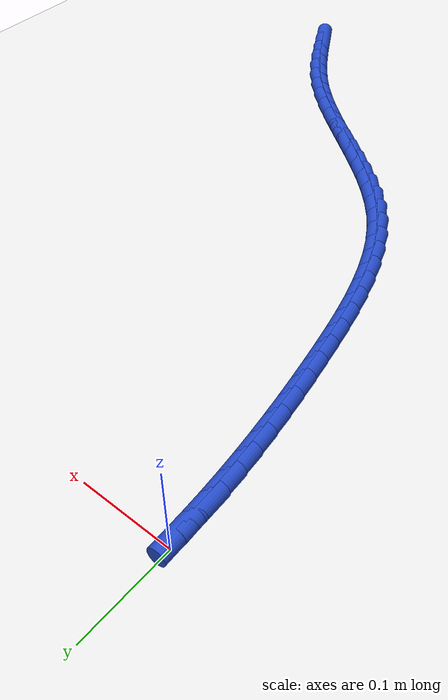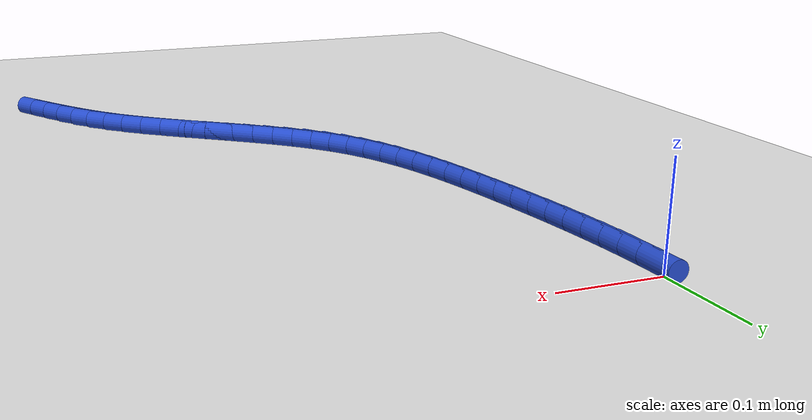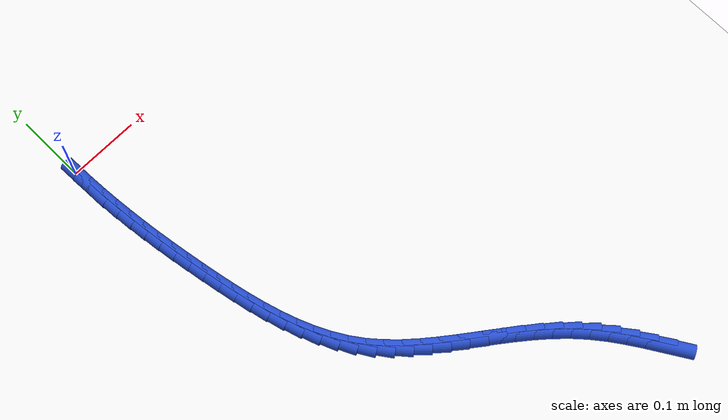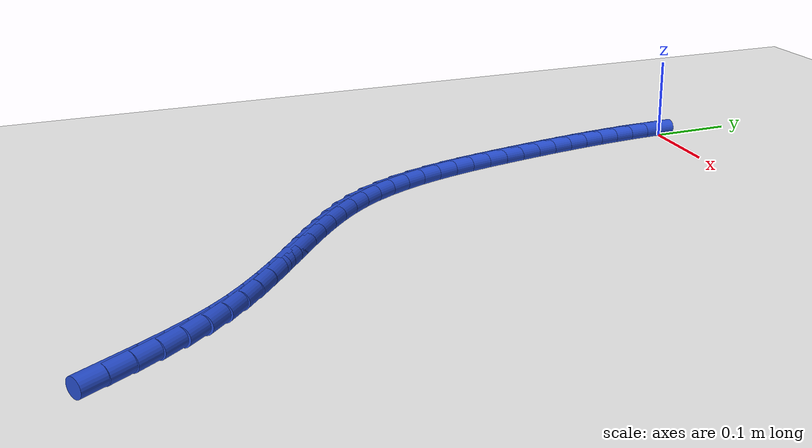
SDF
<sdf version="1.6">
 <world name="default">
  <model name="ground_plane">
   <static>1</static>
   <link name="link">
    <collision name="collision">
     <geometry><plane><normal>0 0 1</normal><size>100 100</size></plane></geometry>
     <surface><friction><ode><mu>100</mu><mu2>50</mu2></ode></friction></surface>
    </collision>
    <visual name="visual">
     <cast_shadows>0</cast_shadows>
     <geometry><plane><normal>0 0 1</normal><size>100 100</size></plane></geometry>
     <material>
      <script><uri>file://media/materials/scripts/gazebo.material</uri><name>Gazebo/WhiteGlow</name></script>
     </material>
    </visual>
   </link>
  </model>
  <model name="line">
   <link name="link_245">
    <pose>0.37834397517060636 -0.7125998111400121 0.01 0 1.57 -1.0191490906033835</pose>
    <collision name="collision">
     <geometry><cylinder><radius>0.01</radius><length>0.08</length></cylinder></geometry>
    </collision>
    <visual name="visual">
     <material>
      <script><name>Gazebo/Blue</name><uri>file://media/materials/scripts/gazebo.material</uri></script>
     </material>
     <geometry><cylinder><radius>0.01</radius><length>0.08</length></cylinder></geometry>
    </visual>
   </link>
   <link name="link_246">
    <pose>0.36546313509296835 -0.6916680827501598 0.01 0 1.57 -0.9931300692732407</pose>
    <collision name="collision">
     <geometry><cylinder><radius>0.01</radius><length>0.08</length></cylinder></geometry>
    </collision>
    <visual name="visual">
     <material>
      <script><name>Gazebo/Blue</name><uri>file://media/materials/scripts/gazebo.material</uri></script>
     </material>
     <geometry><cylinder><radius>0.01</radius><length>0.08</length></cylinder></geometry>
    </visual>
   </link>
   <link name="link_247">
    <pose>0.3520704485507747 -0.6711220488451365 0.01 0 1.57 -0.9532660382957098</pose>
    <collision name="collision">
     <geometry><cylinder><radius>0.01</radius><length>0.08</length></cylinder></geometry>
    </collision>
    <visual name="visual">
     <material>
      <script><name>Gazebo/Blue</name><uri>file://media/materials/scripts/gazebo.material</uri></script>
     </material>
     <geometry><cylinder><radius>0.01</radius><length>0.08</length></cylinder></geometry>
    </visual>
   </link>
   <link name="link_248">
    <pose>0.33792457529140074 -0.6512035332488646 0.01 0 1.57 -0.8992303995549933</pose>
    <collision name="collision">
     <geometry><cylinder><radius>0.01</radius><length>0.08</length></cylinder></geometry>
    </collision>
    <visual name="visual">
     <material>
      <script><name>Gazebo/Blue</name><uri>file://media/materials/scripts/gazebo.material</uri></script>
     </material>
     <geometry><cylinder><radius>0.01</radius><length>0.08</length></cylinder></geometry>
    </visual>
   </link>
   <link name="link_249">
    <pose>0.32278417506222234 -0.6321543597852674 0.01 0 1.57 -0.831809047953428</pose>
    <collision name="collision">
     <geometry><cylinder><radius>0.01</radius><length>0.08</length></cylinder></geometry>
    </collision>
    <visual name="visual">
     <material>
      <script><name>Gazebo/Blue</name><uri>file://media/materials/scripts/gazebo.material</uri></script>
     </material>
     <geometry><cylinder><radius>0.01</radius><length>0.08</length></cylinder></geometry>
    </visual>
   </link>
   <link name="link_250">
    <pose>0.30642457985094623 -0.6142011317170737 0.01 0 1.57 -0.7660137266870134</pose>
    <collision name="collision">
     <geometry><cylinder><radius>0.01</radius><length>0.08</length></cylinder></geometry>
    </collision>
    <visual name="visual">
     <material>
      <script><name>Gazebo/Blue</name><uri>file://media/materials/scripts/gazebo.material</uri></script>
     </material>
     <geometry><cylinder><radius>0.01</radius><length>0.08</length></cylinder></geometry>
    </visual>
   </link>
   <link name="link_251">
    <pose>0.28888545722423525 -0.5973291328577099 0.01 0 1.57 -0.7138799774224115</pose>
    <collision name="collision">
     <geometry><cylinder><radius>0.01</radius><length>0.08</length></cylinder></geometry>
    </collision>
    <visual name="visual">
     <material>
      <script><name>Gazebo/Blue</name><uri>file://media/materials/scripts/gazebo.material</uri></script>
     </material>
     <geometry><cylinder><radius>0.01</radius><length>0.08</length></cylinder></geometry>
    </visual>
   </link>
   <link name="link_252">
    <pose>0.2704178444136168 -0.581330681656933 0.01 0 1.57 -0.6755897471934401</pose>
    <collision name="collision">
     <geometry><cylinder><radius>0.01</radius><length>0.08</length></cylinder></geometry>
    </collision>
    <visual name="visual">
     <material>
      <script><name>Gazebo/Blue</name><uri>file://media/materials/scripts/gazebo.material</uri></script>
     </material>
     <geometry><cylinder><radius>0.01</radius><length>0.08</length></cylinder></geometry>
    </visual>
   </link>
   <link name="link_253">
    <pose>0.2512786913891257 -0.5659926986577726 0.01 0 1.57 -0.6508341289739784</pose>
    <collision name="collision">
     <geometry><cylinder><radius>0.01</radius><length>0.08</length></cylinder></geometry>
    </collision>
    <visual name="visual">
     <material>
      <script><name>Gazebo/Blue</name><uri>file://media/materials/scripts/gazebo.material</uri></script>
     </material>
     <geometry><cylinder><radius>0.01</radius><length>0.08</length></cylinder></geometry>
    </visual>
   </link>
   <link name="link_254">
    <pose>0.2317249481207948 -0.5511021044032574 0.01 0 1.57 -0.6393565794066542</pose>
    <collision name="collision">
     <geometry><cylinder><radius>0.01</radius><length>0.08</length></cylinder></geometry>
    </collision>
    <visual name="visual">
     <material>
      <script><name>Gazebo/Blue</name><uri>file://media/materials/scripts/gazebo.material</uri></script>
     </material>
     <geometry><cylinder><radius>0.01</radius><length>0.08</length></cylinder></geometry>
    </visual>
   </link>
   <link name="link_255">
    <pose>0.21201356457865772 -0.5364458194364166 0.01 0 1.57 -0.641081884900482</pose>
    <collision name="collision">
     <geometry><cylinder><radius>0.01</radius><length>0.08</length></cylinder></geometry>
    </collision>
    <visual name="visual">
     <material>
      <script><name>Gazebo/Blue</name><uri>file://media/materials/scripts/gazebo.material</uri></script>
     </material>
     <geometry><cylinder><radius>0.01</radius><length>0.08</length></cylinder></geometry>
    </visual>
   </link>
   <link name="link_256">
    <pose>0.192401490732748 -0.5218107643002788 0.01 0 1.57 -0.6561763655306646</pose>
    <collision name="collision">
     <geometry><cylinder><radius>0.01</radius><length>0.08</length></cylinder></geometry>
    </collision>
    <visual name="visual">
     <material>
      <script><name>Gazebo/Blue</name><uri>file://media/materials/scripts/gazebo.material</uri></script>
     </material>
     <geometry><cylinder><radius>0.01</radius><length>0.08</length></cylinder></geometry>
    </visual>
   </link>
   <link name="link_257">
    <pose>0.17314567655309926 -0.5069838595378736 0.01 0 1.57 -0.6850477484110048</pose>
    <collision name="collision">
     <geometry><cylinder><radius>0.01</radius><length>0.08</length></cylinder></geometry>
    </collision>
    <visual name="visual">
     <material>
      <script><name>Gazebo/Blue</name><uri>file://media/materials/scripts/gazebo.material</uri></script>
     </material>
     <geometry><cylinder><radius>0.01</radius><length>0.08</length></cylinder></geometry>
    </visual>
   </link>
   <link name="link_258">
    <pose>0.15450307200974503 -0.4917520256922298 0.01 0 1.57 -0.7282779826767604</pose>
    <collision name="collision">
     <geometry><cylinder><radius>0.01</radius><length>0.08</length></cylinder></geometry>
    </collision>
    <visual name="visual">
     <material>
      <script><name>Gazebo/Blue</name><uri>file://media/materials/scripts/gazebo.material</uri></script>
     </material>
     <geometry><cylinder><radius>0.01</radius><length>0.08</length></cylinder></geometry>
    </visual>
   </link>
   <link name="link_259">
    <pose>0.13673062707271888 -0.47590218330637646 0.01 0 1.57 -0.7864662401243016</pose>
    <collision name="collision">
     <geometry><cylinder><radius>0.01</radius><length>0.08</length></cylinder></geometry>
    </collision>
    <visual name="visual">
     <material>
      <script><name>Gazebo/Blue</name><uri>file://media/materials/scripts/gazebo.material</uri></script>
     </material>
     <geometry><cylinder><radius>0.01</radius><length>0.08</length></cylinder></geometry>
    </visual>
   </link>
   <link name="link_260">
    <pose>0.12008529171205436 -0.4592212529233427 0.01 0 1.57 -0.8599518415159249</pose>
    <collision name="collision">
     <geometry><cylinder><radius>0.01</radius><length>0.08</length></cylinder></geometry>
    </collision>
    <visual name="visual">
     <material>
      <script><name>Gazebo/Blue</name><uri>file://media/materials/scripts/gazebo.material</uri></script>
     </material>
     <geometry><cylinder><radius>0.01</radius><length>0.08</length></cylinder></geometry>
    </visual>
   </link>
   <link name="link_261">
    <pose>0.10482401589778458 -0.4414961550861569 0.01 0 1.57 -0.9475885403379194</pose>
    <collision name="collision">
     <geometry><cylinder><radius>0.01</radius><length>0.08</length></cylinder></geometry>
    </collision>
    <visual name="visual">
     <material>
      <script><name>Gazebo/Blue</name><uri>file://media/materials/scripts/gazebo.material</uri></script>
     </material>
     <geometry><cylinder><radius>0.01</radius><length>0.08</length></cylinder></geometry>
    </visual>
   </link>
   <link name="link_262">
    <pose>0.09118950390421879 -0.4225267377561064 0.01 0 1.57 -1.0355263197188833</pose>
    <collision name="collision">
     <geometry><cylinder><radius>0.01</radius><length>0.08</length></cylinder></geometry>
    </collision>
    <visual name="visual">
     <material>
      <script><name>Gazebo/Blue</name><uri>file://media/materials/scripts/gazebo.material</uri></script>
     </material>
     <geometry><cylinder><radius>0.01</radius><length>0.08</length></cylinder></geometry>
    </visual>
   </link>
   <link name="link_263">
    <pose>0.07920291744780436 -0.40231389020284586 0.01 0 1.57 -1.1130215784575517</pose>
    <collision name="collision">
     <geometry><cylinder><radius>0.01</radius><length>0.08</length></cylinder></geometry>
    </collision>
    <visual name="visual">
     <material>
      <script><name>Gazebo/Blue</name><uri>file://media/materials/scripts/gazebo.material</uri></script>
     </material>
     <geometry><cylinder><radius>0.01</radius><length>0.08</length></cylinder></geometry>
    </visual>
   </link>
   <link name="link_264">
    <pose>0.068710481611179 -0.38101724992969915 0.01 0 1.57 -1.1798483005705467</pose>
    <collision name="collision">
     <geometry><cylinder><radius>0.01</radius><length>0.08</length></cylinder></geometry>
    </collision>
    <visual name="visual">
     <material>
      <script><name>Gazebo/Blue</name><uri>file://media/materials/scripts/gazebo.material</uri></script>
     </material>
     <geometry><cylinder><radius>0.01</radius><length>0.08</length></cylinder></geometry>
    </visual>
   </link>
   <link name="link_265">
    <pose>0.05955366027545155 -0.35880077504635144 0.01 0 1.57 -1.2364727321062412</pose>
    <collision name="collision">
     <geometry><cylinder><radius>0.01</radius><length>0.08</length></cylinder></geometry>
    </collision>
    <visual name="visual">
     <material>
      <script><name>Gazebo/Blue</name><uri>file://media/materials/scripts/gazebo.material</uri></script>
     </material>
     <geometry><cylinder><radius>0.01</radius><length>0.08</length></cylinder></geometry>
    </visual>
   </link>
   <link name="link_266">
    <pose>0.0515739173217309 -0.33582842366248805 0.01 0 1.57 -1.2835527300424376</pose>
    <collision name="collision">
     <geometry><cylinder><radius>0.01</radius><length>0.08</length></cylinder></geometry>
    </collision>
    <visual name="visual">
     <material>
      <script><name>Gazebo/Blue</name><uri>file://media/materials/scripts/gazebo.material</uri></script>
     </material>
     <geometry><cylinder><radius>0.01</radius><length>0.08</length></cylinder></geometry>
    </visual>
   </link>
   <link name="link_267">
    <pose>0.044612716631125836 -0.3122641538877939 0.01 0 1.57 -1.3217758745102484</pose>
    <collision name="collision">
     <geometry><cylinder><radius>0.01</radius><length>0.08</length></cylinder></geometry>
    </collision>
    <visual name="visual">
     <material>
      <script><name>Gazebo/Blue</name><uri>file://media/materials/scripts/gazebo.material</uri></script>
     </material>
     <geometry><cylinder><radius>0.01</radius><length>0.08</length></cylinder></geometry>
    </visual>
   </link>
   <link name="link_268">
    <pose>0.03851152208474521 -0.2882719238319542 0.01 0 1.57 -1.3517561274311585</pose>
    <collision name="collision">
     <geometry><cylinder><radius>0.01</radius><length>0.08</length></cylinder></geometry>
    </collision>
    <visual name="visual">
     <material>
      <script><name>Gazebo/Blue</name><uri>file://media/materials/scripts/gazebo.material</uri></script>
     </material>
     <geometry><cylinder><radius>0.01</radius><length>0.08</length></cylinder></geometry>
    </visual>
   </link>
   <link name="link_269">
    <pose>0.033111797563697906 -0.2640156916046542 0.01 0 1.57 -1.37397186811467</pose>
    <collision name="collision">
     <geometry><cylinder><radius>0.01</radius><length>0.08</length></cylinder></geometry>
    </collision>
    <visual name="visual">
     <material>
      <script><name>Gazebo/Blue</name><uri>file://media/materials/scripts/gazebo.material</uri></script>
     </material>
     <geometry><cylinder><radius>0.01</radius><length>0.08</length></cylinder></geometry>
    </visual>
   </link>
   <link name="link_270">
    <pose>0.028255006949092578 -0.23965941531557836 0.01 0 1.57 -1.3887667406625646</pose>
    <collision name="collision">
     <geometry><cylinder><radius>0.01</radius><length>0.08</length></cylinder></geometry>
    </collision>
    <visual name="visual">
     <material>
      <script><name>Gazebo/Blue</name><uri>file://media/materials/scripts/gazebo.material</uri></script>
     </material>
     <geometry><cylinder><radius>0.01</radius><length>0.08</length></cylinder></geometry>
    </visual>
   </link>
   <link name="link_271">
    <pose>0.023783425164528065 -0.21536619926856204 0.01 0 1.57 -1.3993578511209492</pose>
    <collision name="collision">
     <geometry><cylinder><radius>0.01</radius><length>0.08</length></cylinder></geometry>
    </collision>
    <visual name="visual">
     <material>
      <script><name>Gazebo/Blue</name><uri>file://media/materials/scripts/gazebo.material</uri></script>
     </material>
     <geometry><cylinder><radius>0.01</radius><length>0.08</length></cylinder></geometry>
    </visual>
   </link>
   <link name="link_272">
    <pose>0.01960460481178044 -0.19123042823141725 0.01 0 1.57 -1.4110814374841714</pose>
    <collision name="collision">
     <geometry><cylinder><radius>0.01</radius><length>0.08</length></cylinder></geometry>
    </collision>
    <visual name="visual">
     <material>
      <script><name>Gazebo/Blue</name><uri>file://media/materials/scripts/gazebo.material</uri></script>
     </material>
     <geometry><cylinder><radius>0.01</radius><length>0.08</length></cylinder></geometry>
    </visual>
   </link>
   <link name="link_273">
    <pose>0.015738203089775773 -0.1672284715014768 0.01 0 1.57 -1.4244533659177512</pose>
    <collision name="collision">
     <geometry><cylinder><radius>0.01</radius><length>0.08</length></cylinder></geometry>
    </collision>
    <visual name="visual">
     <material>
      <script><name>Gazebo/Blue</name><uri>file://media/materials/scripts/gazebo.material</uri></script>
     </material>
     <geometry><cylinder><radius>0.01</radius><length>0.08</length></cylinder></geometry>
    </visual>
   </link>
   <link name="link_274">
    <pose>0.0122149210378409 -0.1433250722335786 0.01 0 1.57 -1.4394491816027628</pose>
    <collision name="collision">
     <geometry><cylinder><radius>0.01</radius><length>0.08</length></cylinder></geometry>
    </collision>
    <visual name="visual">
     <material>
      <script><name>Gazebo/Blue</name><uri>file://media/materials/scripts/gazebo.material</uri></script>
     </material>
     <geometry><cylinder><radius>0.01</radius><length>0.08</length></cylinder></geometry>
    </visual>
   </link>
   <link name="link_275">
    <pose>0.009065459695302659 -0.11948497358256063 0.01 0 1.57 -1.4560276920289437</pose>
    <collision name="collision">
     <geometry><cylinder><radius>0.01</radius><length>0.08</length></cylinder></geometry>
    </collision>
    <visual name="visual">
     <material>
      <script><name>Gazebo/Blue</name><uri>file://media/materials/scripts/gazebo.material</uri></script>
     </material>
     <geometry><cylinder><radius>0.01</radius><length>0.08</length></cylinder></geometry>
    </visual>
   </link>
   <link name="link_276">
    <pose>0.006320520101487876 -0.09567291870326076 0.01 0 1.57 -1.474130129731455</pose>
    <collision name="collision">
     <geometry><cylinder><radius>0.01</radius><length>0.08</length></cylinder></geometry>
    </collision>
    <visual name="visual">
     <material>
      <script><name>Gazebo/Blue</name><uri>file://media/materials/scripts/gazebo.material</uri></script>
     </material>
     <geometry><cylinder><radius>0.01</radius><length>0.08</length></cylinder></geometry>
    </visual>
   </link>
   <link name="link_277">
    <pose>0.004010803295723389 -0.07185365075051692 0.01 0 1.57 -1.4936797084316795</pose>
    <collision name="collision">
     <geometry><cylinder><radius>0.01</radius><length>0.08</length></cylinder></geometry>
    </collision>
    <visual name="visual">
     <material>
      <script><name>Gazebo/Blue</name><uri>file://media/materials/scripts/gazebo.material</uri></script>
     </material>
     <geometry><cylinder><radius>0.01</radius><length>0.08</length></cylinder></geometry>
    </visual>
   </link>
   <link name="link_278">
    <pose>0.0021670103173360264 -0.047991912879166994 0.01 0 1.57 -1.5145816713385503</pose>
    <collision name="collision">
     <geometry><cylinder><radius>0.01</radius><length>0.08</length></cylinder></geometry>
    </collision>
    <visual name="visual">
     <material>
      <script><name>Gazebo/Blue</name><uri>file://media/materials/scripts/gazebo.material</uri></script>
     </material>
     <geometry><cylinder><radius>0.01</radius><length>0.08</length></cylinder></geometry>
    </visual>
   </link>
   <link name="link_279">
    <pose>0.0008198422056525921 -0.02405244824404822 0.01 0 1.57 -1.5367239149895693</pose>
    <collision name="collision">
     <geometry><cylinder><radius>0.01</radius><length>0.08</length></cylinder></geometry>
    </collision>
    <visual name="visual">
     <material>
      <script><name>Gazebo/Blue</name><uri>file://media/materials/scripts/gazebo.material</uri></script>
     </material>
     <geometry><cylinder><radius>0.01</radius><length>0.08</length></cylinder></geometry>
    </visual>
   </link>
  </model>
 </world>
</sdf>
